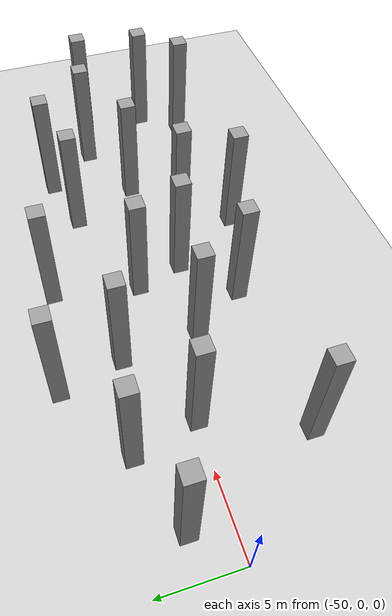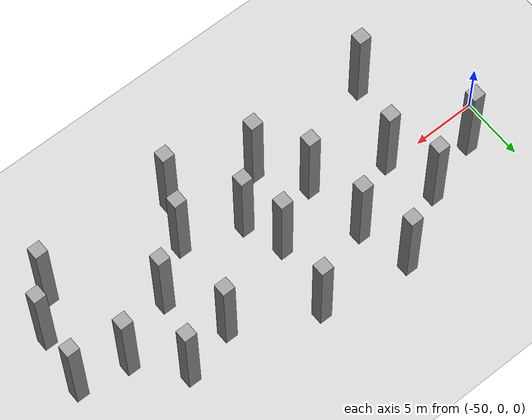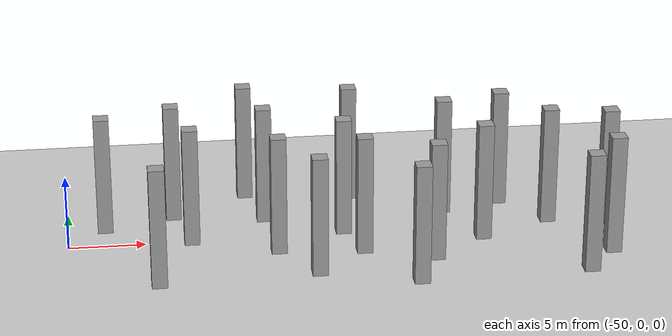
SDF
<sdf version="1.7">
 <world name="default">
  <model name="ground_plane">
   <static>1</static>
   <link name="link">
    <collision name="collision">
     <geometry><plane><normal>0 0 1</normal><size>100 100</size></plane></geometry>
     <surface>
      <contact><collide_bitmask>65535</collide_bitmask></contact>
      <friction><ode><mu>100</mu><mu2>50</mu2></ode></friction>
     </surface>
    </collision>
    <visual name="visual">
     <cast_shadows>0</cast_shadows>
     <geometry><plane><normal>0 0 1</normal><size>100 100</size></plane></geometry>
     <material>
      <script><uri>file://media/materials/scripts/gazebo.material</uri><name>Gazebo/Grey</name></script>
     </material>
    </visual>
   </link>
  </model>
  <model name="unit_box_static42_clone_35_clone_23">
   <link name="link">
    <inertial>
     <mass>1</mass>
     <inertia>
      <ixx>0.166667</ixx>
      <ixy>0</ixy>
      <ixz>0</ixz>
      <iyy>0.166667</iyy>
      <iyz>0</iyz>
      <izz>0.166667</izz>
     </inertia>
    </inertial>
    <visual name="visual">
     <geometry><box><size>1 1 8</size></box></geometry>
     <material>
      <script><name>Gazebo/Grey</name><uri>file://media/materials/scripts/gazebo.material</uri></script>
      <shader type="pixel"/>
     </material>
    </visual>
    <collision name="collision">
     <geometry><box><size>1 1 8</size></box></geometry>
     <surface>
      <friction>
       <ode><mu>1</mu><mu2>1</mu2><fdir1>0 0 0</fdir1><slip1>0</slip1><slip2>0</slip2></ode>
       <torsional>
        <coefficient>1</coefficient>
        <patch_radius>0</patch_radius>
        <surface_radius>0</surface_radius>
        <use_patch_radius>1</use_patch_radius>
        <ode><slip>0</slip></ode>
       </torsional>
      </friction>
      <bounce><restitution_coefficient>0</restitution_coefficient><threshold>1e+06</threshold></bounce>
      <contact>
       <collide_without_contact>0</collide_without_contact>
       <collide_without_contact_bitmask>1</collide_without_contact_bitmask>
       <collide_bitmask>1</collide_bitmask>
       <ode>
        <soft_cfm>0</soft_cfm>
        <soft_erp>0.2</soft_erp>
        <kp>1e+13</kp>
        <kd>1</kd>
        <max_vel>0.01</max_vel>
        <min_depth>0</min_depth>
       </ode>
       <bullet>
        <split_impulse>1</split_impulse>
        <split_impulse_penetration_threshold>-0.01</split_impulse_penetration_threshold>
        <soft_cfm>0</soft_cfm>
        <soft_erp>0.2</soft_erp>
        <kp>1e+13</kp>
        <kd>1</kd>
       </bullet>
      </contact>
     </surface>
    </collision>
   </link>
   <static>1</static>
   <pose>-25 3 4 0 -0 0</pose>
  </model>
  <model name="unit_box_static42_clone_35_clone_24">
   <link name="link">
    <inertial>
     <mass>1</mass>
     <inertia>
      <ixx>0.166667</ixx>
      <ixy>0</ixy>
      <ixz>0</ixz>
      <iyy>0.166667</iyy>
      <iyz>0</iyz>
      <izz>0.166667</izz>
     </inertia>
    </inertial>
    <visual name="visual">
     <geometry><box><size>1 1 8</size></box></geometry>
     <material>
      <script><name>Gazebo/Grey</name><uri>file://media/materials/scripts/gazebo.material</uri></script>
      <shader type="pixel"/>
     </material>
    </visual>
    <collision name="collision">
     <geometry><box><size>1 1 8</size></box></geometry>
     <surface>
      <friction>
       <ode><mu>1</mu><mu2>1</mu2><fdir1>0 0 0</fdir1><slip1>0</slip1><slip2>0</slip2></ode>
       <torsional>
        <coefficient>1</coefficient>
        <patch_radius>0</patch_radius>
        <surface_radius>0</surface_radius>
        <use_patch_radius>1</use_patch_radius>
        <ode><slip>0</slip></ode>
       </torsional>
      </friction>
      <bounce><restitution_coefficient>0</restitution_coefficient><threshold>1e+06</threshold></bounce>
      <contact>
       <collide_without_contact>0</collide_without_contact>
       <collide_without_contact_bitmask>1</collide_without_contact_bitmask>
       <collide_bitmask>1</collide_bitmask>
       <ode>
        <soft_cfm>0</soft_cfm>
        <soft_erp>0.2</soft_erp>
        <kp>1e+13</kp>
        <kd>1</kd>
        <max_vel>0.01</max_vel>
        <min_depth>0</min_depth>
       </ode>
       <bullet>
        <split_impulse>1</split_impulse>
        <split_impulse_penetration_threshold>-0.01</split_impulse_penetration_threshold>
        <soft_cfm>0</soft_cfm>
        <soft_erp>0.2</soft_erp>
        <kp>1e+13</kp>
        <kd>1</kd>
       </bullet>
      </contact>
     </surface>
    </collision>
   </link>
   <static>1</static>
   <pose>-17 -7 4 0 -0 0</pose>
  </model>
  <model name="unit_box_static42_clone_35_clone_26">
   <link name="link">
    <inertial>
     <mass>1</mass>
     <inertia>
      <ixx>0.166667</ixx>
      <ixy>0</ixy>
      <ixz>0</ixz>
      <iyy>0.166667</iyy>
      <iyz>0</iyz>
      <izz>0.166667</izz>
     </inertia>
    </inertial>
    <visual name="visual">
     <geometry><box><size>1 1 8</size></box></geometry>
     <material>
      <script><name>Gazebo/Grey</name><uri>file://media/materials/scripts/gazebo.material</uri></script>
      <shader type="pixel"/>
     </material>
    </visual>
    <collision name="collision">
     <geometry><box><size>1 1 8</size></box></geometry>
     <surface>
      <friction>
       <ode><mu>1</mu><mu2>1</mu2><fdir1>0 0 0</fdir1><slip1>0</slip1><slip2>0</slip2></ode>
       <torsional>
        <coefficient>1</coefficient>
        <patch_radius>0</patch_radius>
        <surface_radius>0</surface_radius>
        <use_patch_radius>1</use_patch_radius>
        <ode><slip>0</slip></ode>
       </torsional>
      </friction>
      <bounce><restitution_coefficient>0</restitution_coefficient><threshold>1e+06</threshold></bounce>
      <contact>
       <collide_without_contact>0</collide_without_contact>
       <collide_without_contact_bitmask>1</collide_without_contact_bitmask>
       <collide_bitmask>1</collide_bitmask>
       <ode>
        <soft_cfm>0</soft_cfm>
        <soft_erp>0.2</soft_erp>
        <kp>1e+13</kp>
        <kd>1</kd>
        <max_vel>0.01</max_vel>
        <min_depth>0</min_depth>
       </ode>
       <bullet>
        <split_impulse>1</split_impulse>
        <split_impulse_penetration_threshold>-0.01</split_impulse_penetration_threshold>
        <soft_cfm>0</soft_cfm>
        <soft_erp>0.2</soft_erp>
        <kp>1e+13</kp>
        <kd>1</kd>
       </bullet>
      </contact>
     </surface>
    </collision>
   </link>
   <static>1</static>
   <pose>-14.4084 0 4 0 -0 0</pose>
  </model>
  <model name="unit_box_static42_clone_35_clone_28">
   <link name="link">
    <inertial>
     <mass>1</mass>
     <inertia>
      <ixx>0.166667</ixx>
      <ixy>0</ixy>
      <ixz>0</ixz>
      <iyy>0.166667</iyy>
      <iyz>0</iyz>
      <izz>0.166667</izz>
     </inertia>
    </inertial>
    <visual name="visual">
     <geometry><box><size>1 1 8</size></box></geometry>
     <material>
      <script><name>Gazebo/Grey</name><uri>file://media/materials/scripts/gazebo.material</uri></script>
      <shader type="pixel"/>
     </material>
    </visual>
    <collision name="collision">
     <geometry><box><size>1 1 8</size></box></geometry>
     <surface>
      <friction>
       <ode><mu>1</mu><mu2>1</mu2><fdir1>0 0 0</fdir1><slip1>0</slip1><slip2>0</slip2></ode>
       <torsional>
        <coefficient>1</coefficient>
        <patch_radius>0</patch_radius>
        <surface_radius>0</surface_radius>
        <use_patch_radius>1</use_patch_radius>
        <ode><slip>0</slip></ode>
       </torsional>
      </friction>
      <bounce><restitution_coefficient>0</restitution_coefficient><threshold>1e+06</threshold></bounce>
      <contact>
       <collide_without_contact>0</collide_without_contact>
       <collide_without_contact_bitmask>1</collide_without_contact_bitmask>
       <collide_bitmask>1</collide_bitmask>
       <ode>
        <soft_cfm>0</soft_cfm>
        <soft_erp>0.2</soft_erp>
        <kp>1e+13</kp>
        <kd>1</kd>
        <max_vel>0.01</max_vel>
        <min_depth>0</min_depth>
       </ode>
       <bullet>
        <split_impulse>1</split_impulse>
        <split_impulse_penetration_threshold>-0.01</split_impulse_penetration_threshold>
        <soft_cfm>0</soft_cfm>
        <soft_erp>0.2</soft_erp>
        <kp>1e+13</kp>
        <kd>1</kd>
       </bullet>
      </contact>
     </surface>
    </collision>
   </link>
   <static>1</static>
   <pose>-23 -1.4318 4 0 -0 0</pose>
  </model>
  <model name="unit_box_static42_clone_35_clone_29">
   <link name="link">
    <inertial>
     <mass>1</mass>
     <inertia>
      <ixx>0.166667</ixx>
      <ixy>0</ixy>
      <ixz>0</ixz>
      <iyy>0.166667</iyy>
      <iyz>0</iyz>
      <izz>0.166667</izz>
     </inertia>
    </inertial>
    <visual name="visual">
     <geometry><box><size>1 1 8</size></box></geometry>
     <material>
      <script><name>Gazebo/Grey</name><uri>file://media/materials/scripts/gazebo.material</uri></script>
      <shader type="pixel"/>
     </material>
    </visual>
    <collision name="collision">
     <geometry><box><size>1 1 8</size></box></geometry>
     <surface>
      <friction>
       <ode><mu>1</mu><mu2>1</mu2><fdir1>0 0 0</fdir1><slip1>0</slip1><slip2>0</slip2></ode>
       <torsional>
        <coefficient>1</coefficient>
        <patch_radius>0</patch_radius>
        <surface_radius>0</surface_radius>
        <use_patch_radius>1</use_patch_radius>
        <ode><slip>0</slip></ode>
       </torsional>
      </friction>
      <bounce><restitution_coefficient>0</restitution_coefficient><threshold>1e+06</threshold></bounce>
      <contact>
       <collide_without_contact>0</collide_without_contact>
       <collide_without_contact_bitmask>1</collide_without_contact_bitmask>
       <collide_bitmask>1</collide_bitmask>
       <ode>
        <soft_cfm>0</soft_cfm>
        <soft_erp>0.2</soft_erp>
        <kp>1e+13</kp>
        <kd>1</kd>
        <max_vel>0.01</max_vel>
        <min_depth>0</min_depth>
       </ode>
       <bullet>
        <split_impulse>1</split_impulse>
        <split_impulse_penetration_threshold>-0.01</split_impulse_penetration_threshold>
        <soft_cfm>0</soft_cfm>
        <soft_erp>0.2</soft_erp>
        <kp>1e+13</kp>
        <kd>1</kd>
       </bullet>
      </contact>
     </surface>
    </collision>
   </link>
   <static>1</static>
   <pose>-21 4 4 0 -0 0</pose>
  </model>
  <model name="unit_box_static42_clone_35_clone_30">
   <link name="link">
    <inertial>
     <mass>1</mass>
     <inertia>
      <ixx>0.166667</ixx>
      <ixy>0</ixy>
      <ixz>0</ixz>
      <iyy>0.166667</iyy>
      <iyz>0</iyz>
      <izz>0.166667</izz>
     </inertia>
    </inertial>
    <visual name="visual">
     <geometry><box><size>1 1 8</size></box></geometry>
     <material>
      <script><name>Gazebo/Grey</name><uri>file://media/materials/scripts/gazebo.material</uri></script>
      <shader type="pixel"/>
     </material>
    </visual>
    <collision name="collision">
     <geometry><box><size>1 1 8</size></box></geometry>
     <surface>
      <friction>
       <ode><mu>1</mu><mu2>1</mu2><fdir1>0 0 0</fdir1><slip1>0</slip1><slip2>0</slip2></ode>
       <torsional>
        <coefficient>1</coefficient>
        <patch_radius>0</patch_radius>
        <surface_radius>0</surface_radius>
        <use_patch_radius>1</use_patch_radius>
        <ode><slip>0</slip></ode>
       </torsional>
      </friction>
      <bounce><restitution_coefficient>0</restitution_coefficient><threshold>1e+06</threshold></bounce>
      <contact>
       <collide_without_contact>0</collide_without_contact>
       <collide_without_contact_bitmask>1</collide_without_contact_bitmask>
       <collide_bitmask>1</collide_bitmask>
       <ode>
        <soft_cfm>0</soft_cfm>
        <soft_erp>0.2</soft_erp>
        <kp>1e+13</kp>
        <kd>1</kd>
        <max_vel>0.01</max_vel>
        <min_depth>0</min_depth>
       </ode>
       <bullet>
        <split_impulse>1</split_impulse>
        <split_impulse_penetration_threshold>-0.01</split_impulse_penetration_threshold>
        <soft_cfm>0</soft_cfm>
        <soft_erp>0.2</soft_erp>
        <kp>1e+13</kp>
        <kd>1</kd>
       </bullet>
      </contact>
     </surface>
    </collision>
   </link>
   <static>1</static>
   <pose>-15 -4.45187 4 0 -0 0</pose>
  </model>
  <model name="unit_box_static42_clone_35_clone_31">
   <link name="link">
    <inertial>
     <mass>1</mass>
     <inertia>
      <ixx>0.166667</ixx>
      <ixy>0</ixy>
      <ixz>0</ixz>
      <iyy>0.166667</iyy>
      <iyz>0</iyz>
      <izz>0.166667</izz>
     </inertia>
    </inertial>
    <visual name="visual">
     <geometry><box><size>1 1 8</size></box></geometry>
     <material>
      <script><name>Gazebo/Grey</name><uri>file://media/materials/scripts/gazebo.material</uri></script>
      <shader type="pixel"/>
     </material>
    </visual>
    <collision name="collision">
     <geometry><box><size>1 1 8</size></box></geometry>
     <surface>
      <friction>
       <ode><mu>1</mu><mu2>1</mu2><fdir1>0 0 0</fdir1><slip1>0</slip1><slip2>0</slip2></ode>
       <torsional>
        <coefficient>1</coefficient>
        <patch_radius>0</patch_radius>
        <surface_radius>0</surface_radius>
        <use_patch_radius>1</use_patch_radius>
        <ode><slip>0</slip></ode>
       </torsional>
      </friction>
      <bounce><restitution_coefficient>0</restitution_coefficient><threshold>1e+06</threshold></bounce>
      <contact>
       <collide_without_contact>0</collide_without_contact>
       <collide_without_contact_bitmask>1</collide_without_contact_bitmask>
       <collide_bitmask>1</collide_bitmask>
       <ode>
        <soft_cfm>0</soft_cfm>
        <soft_erp>0.2</soft_erp>
        <kp>1e+13</kp>
        <kd>1</kd>
        <max_vel>0.01</max_vel>
        <min_depth>0</min_depth>
       </ode>
       <bullet>
        <split_impulse>1</split_impulse>
        <split_impulse_penetration_threshold>-0.01</split_impulse_penetration_threshold>
        <soft_cfm>0</soft_cfm>
        <soft_erp>0.2</soft_erp>
        <kp>1e+13</kp>
        <kd>1</kd>
       </bullet>
      </contact>
     </surface>
    </collision>
   </link>
   <static>1</static>
   <pose>-32 0.496419 4 0 -0 0</pose>
  </model>
  <model name="unit_box_static42_clone_35_clone_32">
   <link name="link">
    <inertial>
     <mass>1</mass>
     <inertia>
      <ixx>0.166667</ixx>
      <ixy>0</ixy>
      <ixz>0</ixz>
      <iyy>0.166667</iyy>
      <iyz>0</iyz>
      <izz>0.166667</izz>
     </inertia>
    </inertial>
    <visual name="visual">
     <geometry><box><size>1 1 8</size></box></geometry>
     <material>
      <script><name>Gazebo/Grey</name><uri>file://media/materials/scripts/gazebo.material</uri></script>
      <shader type="pixel"/>
     </material>
    </visual>
    <collision name="collision">
     <geometry><box><size>1 1 8</size></box></geometry>
     <surface>
      <friction>
       <ode><mu>1</mu><mu2>1</mu2><fdir1>0 0 0</fdir1><slip1>0</slip1><slip2>0</slip2></ode>
       <torsional>
        <coefficient>1</coefficient>
        <patch_radius>0</patch_radius>
        <surface_radius>0</surface_radius>
        <use_patch_radius>1</use_patch_radius>
        <ode><slip>0</slip></ode>
       </torsional>
      </friction>
      <bounce><restitution_coefficient>0</restitution_coefficient><threshold>1e+06</threshold></bounce>
      <contact>
       <collide_without_contact>0</collide_without_contact>
       <collide_without_contact_bitmask>1</collide_without_contact_bitmask>
       <collide_bitmask>1</collide_bitmask>
       <ode>
        <soft_cfm>0</soft_cfm>
        <soft_erp>0.2</soft_erp>
        <kp>1e+13</kp>
        <kd>1</kd>
        <max_vel>0.01</max_vel>
        <min_depth>0</min_depth>
       </ode>
       <bullet>
        <split_impulse>1</split_impulse>
        <split_impulse_penetration_threshold>-0.01</split_impulse_penetration_threshold>
        <soft_cfm>0</soft_cfm>
        <soft_erp>0.2</soft_erp>
        <kp>1e+13</kp>
        <kd>1</kd>
       </bullet>
      </contact>
     </surface>
    </collision>
   </link>
   <static>1</static>
   <pose>-34.2306 -5.48897 4 0 -0 0</pose>
  </model>
  <model name="unit_box_static42_clone_35_clone_33">
   <link name="link">
    <inertial>
     <mass>1</mass>
     <inertia>
      <ixx>0.166667</ixx>
      <ixy>0</ixy>
      <ixz>0</ixz>
      <iyy>0.166667</iyy>
      <iyz>0</iyz>
      <izz>0.166667</izz>
     </inertia>
    </inertial>
    <visual name="visual">
     <geometry><box><size>1 1 8</size></box></geometry>
     <material>
      <script><name>Gazebo/Grey</name><uri>file://media/materials/scripts/gazebo.material</uri></script>
      <shader type="pixel"/>
     </material>
    </visual>
    <collision name="collision">
     <geometry><box><size>1 1 8</size></box></geometry>
     <surface>
      <friction>
       <ode><mu>1</mu><mu2>1</mu2><fdir1>0 0 0</fdir1><slip1>0</slip1><slip2>0</slip2></ode>
       <torsional>
        <coefficient>1</coefficient>
        <patch_radius>0</patch_radius>
        <surface_radius>0</surface_radius>
        <use_patch_radius>1</use_patch_radius>
        <ode><slip>0</slip></ode>
       </torsional>
      </friction>
      <bounce><restitution_coefficient>0</restitution_coefficient><threshold>1e+06</threshold></bounce>
      <contact>
       <collide_without_contact>0</collide_without_contact>
       <collide_without_contact_bitmask>1</collide_without_contact_bitmask>
       <collide_bitmask>1</collide_bitmask>
       <ode>
        <soft_cfm>0</soft_cfm>
        <soft_erp>0.2</soft_erp>
        <kp>1e+13</kp>
        <kd>1</kd>
        <max_vel>0.01</max_vel>
        <min_depth>0</min_depth>
       </ode>
       <bullet>
        <split_impulse>1</split_impulse>
        <split_impulse_penetration_threshold>-0.01</split_impulse_penetration_threshold>
        <soft_cfm>0</soft_cfm>
        <soft_erp>0.2</soft_erp>
        <kp>1e+13</kp>
        <kd>1</kd>
       </bullet>
      </contact>
     </surface>
    </collision>
   </link>
   <static>1</static>
   <pose>-47.5717 2.48797 4 0 -0 0</pose>
  </model>
  <model name="unit_box_static42_clone_35_clone_34">
   <link name="link">
    <inertial>
     <mass>1</mass>
     <inertia>
      <ixx>0.166667</ixx>
      <ixy>0</ixy>
      <ixz>0</ixz>
      <iyy>0.166667</iyy>
      <iyz>0</iyz>
      <izz>0.166667</izz>
     </inertia>
    </inertial>
    <visual name="visual">
     <geometry><box><size>1 1 8</size></box></geometry>
     <material>
      <script><name>Gazebo/Grey</name><uri>file://media/materials/scripts/gazebo.material</uri></script>
      <shader type="pixel"/>
     </material>
    </visual>
    <collision name="collision">
     <geometry><box><size>1 1 8</size></box></geometry>
     <surface>
      <friction>
       <ode><mu>1</mu><mu2>1</mu2><fdir1>0 0 0</fdir1><slip1>0</slip1><slip2>0</slip2></ode>
       <torsional>
        <coefficient>1</coefficient>
        <patch_radius>0</patch_radius>
        <surface_radius>0</surface_radius>
        <use_patch_radius>1</use_patch_radius>
        <ode><slip>0</slip></ode>
       </torsional>
      </friction>
      <bounce><restitution_coefficient>0</restitution_coefficient><threshold>1e+06</threshold></bounce>
      <contact>
       <collide_without_contact>0</collide_without_contact>
       <collide_without_contact_bitmask>1</collide_without_contact_bitmask>
       <collide_bitmask>1</collide_bitmask>
       <ode>
        <soft_cfm>0</soft_cfm>
        <soft_erp>0.2</soft_erp>
        <kp>1e+13</kp>
        <kd>1</kd>
        <max_vel>0.01</max_vel>
        <min_depth>0</min_depth>
       </ode>
       <bullet>
        <split_impulse>1</split_impulse>
        <split_impulse_penetration_threshold>-0.01</split_impulse_penetration_threshold>
        <soft_cfm>0</soft_cfm>
        <soft_erp>0.2</soft_erp>
        <kp>1e+13</kp>
        <kd>1</kd>
       </bullet>
      </contact>
     </surface>
    </collision>
   </link>
   <static>1</static>
   <pose>-44.4069 -6 4 0 -0 0</pose>
  </model>
  <model name="unit_box_static42_clone_35_clone_36">
   <link name="link">
    <inertial>
     <mass>1</mass>
     <inertia>
      <ixx>0.166667</ixx>
      <ixy>0</ixy>
      <ixz>0</ixz>
      <iyy>0.166667</iyy>
      <iyz>0</iyz>
      <izz>0.166667</izz>
     </inertia>
    </inertial>
    <visual name="visual">
     <geometry><box><size>1 1 8</size></box></geometry>
     <material>
      <script><name>Gazebo/Grey</name><uri>file://media/materials/scripts/gazebo.material</uri></script>
      <shader type="pixel"/>
     </material>
    </visual>
    <collision name="collision">
     <geometry><box><size>1 1 8</size></box></geometry>
     <surface>
      <friction>
       <ode><mu>1</mu><mu2>1</mu2><fdir1>0 0 0</fdir1><slip1>0</slip1><slip2>0</slip2></ode>
       <torsional>
        <coefficient>1</coefficient>
        <patch_radius>0</patch_radius>
        <surface_radius>0</surface_radius>
        <use_patch_radius>1</use_patch_radius>
        <ode><slip>0</slip></ode>
       </torsional>
      </friction>
      <bounce><restitution_coefficient>0</restitution_coefficient><threshold>1e+06</threshold></bounce>
      <contact>
       <collide_without_contact>0</collide_without_contact>
       <collide_without_contact_bitmask>1</collide_without_contact_bitmask>
       <collide_bitmask>1</collide_bitmask>
       <ode>
        <soft_cfm>0</soft_cfm>
        <soft_erp>0.2</soft_erp>
        <kp>1e+13</kp>
        <kd>1</kd>
        <max_vel>0.01</max_vel>
        <min_depth>0</min_depth>
       </ode>
       <bullet>
        <split_impulse>1</split_impulse>
        <split_impulse_penetration_threshold>-0.01</split_impulse_penetration_threshold>
        <soft_cfm>0</soft_cfm>
        <soft_erp>0.2</soft_erp>
        <kp>1e+13</kp>
        <kd>1</kd>
       </bullet>
      </contact>
     </surface>
    </collision>
   </link>
   <static>1</static>
   <pose>-43 4 4 0 -0 0</pose>
  </model>
  <model name="unit_box_static42_clone_35_clone_37">
   <link name="link">
    <inertial>
     <mass>1</mass>
     <inertia>
      <ixx>0.166667</ixx>
      <ixy>0</ixy>
      <ixz>0</ixz>
      <iyy>0.166667</iyy>
      <iyz>0</iyz>
      <izz>0.166667</izz>
     </inertia>
    </inertial>
    <visual name="visual">
     <geometry><box><size>1 1 8</size></box></geometry>
     <material>
      <script><name>Gazebo/Grey</name><uri>file://media/materials/scripts/gazebo.material</uri></script>
      <shader type="pixel"/>
     </material>
    </visual>
    <collision name="collision">
     <geometry><box><size>1 1 8</size></box></geometry>
     <surface>
      <friction>
       <ode><mu>1</mu><mu2>1</mu2><fdir1>0 0 0</fdir1><slip1>0</slip1><slip2>0</slip2></ode>
       <torsional>
        <coefficient>1</coefficient>
        <patch_radius>0</patch_radius>
        <surface_radius>0</surface_radius>
        <use_patch_radius>1</use_patch_radius>
        <ode><slip>0</slip></ode>
       </torsional>
      </friction>
      <bounce><restitution_coefficient>0</restitution_coefficient><threshold>1e+06</threshold></bounce>
      <contact>
       <collide_without_contact>0</collide_without_contact>
       <collide_without_contact_bitmask>1</collide_without_contact_bitmask>
       <collide_bitmask>1</collide_bitmask>
       <ode>
        <soft_cfm>0</soft_cfm>
        <soft_erp>0.2</soft_erp>
        <kp>1e+13</kp>
        <kd>1</kd>
        <max_vel>0.01</max_vel>
        <min_depth>0</min_depth>
       </ode>
       <bullet>
        <split_impulse>1</split_impulse>
        <split_impulse_penetration_threshold>-0.01</split_impulse_penetration_threshold>
        <soft_cfm>0</soft_cfm>
        <soft_erp>0.2</soft_erp>
        <kp>1e+13</kp>
        <kd>1</kd>
       </bullet>
      </contact>
     </surface>
    </collision>
   </link>
   <static>1</static>
   <pose>-38 7 4 0 -0 0</pose>
  </model>
  <model name="unit_box_static42_clone_35_clone_38">
   <link name="link">
    <inertial>
     <mass>1</mass>
     <inertia>
      <ixx>0.166667</ixx>
      <ixy>0</ixy>
      <ixz>0</ixz>
      <iyy>0.166667</iyy>
      <iyz>0</iyz>
      <izz>0.166667</izz>
     </inertia>
    </inertial>
    <visual name="visual">
     <geometry><box><size>1 1 8</size></box></geometry>
     <material>
      <script><name>Gazebo/Grey</name><uri>file://media/materials/scripts/gazebo.material</uri></script>
      <shader type="pixel"/>
     </material>
    </visual>
    <collision name="collision">
     <geometry><box><size>1 1 8</size></box></geometry>
     <surface>
      <friction>
       <ode><mu>1</mu><mu2>1</mu2><fdir1>0 0 0</fdir1><slip1>0</slip1><slip2>0</slip2></ode>
       <torsional>
        <coefficient>1</coefficient>
        <patch_radius>0</patch_radius>
        <surface_radius>0</surface_radius>
        <use_patch_radius>1</use_patch_radius>
        <ode><slip>0</slip></ode>
       </torsional>
      </friction>
      <bounce><restitution_coefficient>0</restitution_coefficient><threshold>1e+06</threshold></bounce>
      <contact>
       <collide_without_contact>0</collide_without_contact>
       <collide_without_contact_bitmask>1</collide_without_contact_bitmask>
       <collide_bitmask>1</collide_bitmask>
       <ode>
        <soft_cfm>0</soft_cfm>
        <soft_erp>0.2</soft_erp>
        <kp>1e+13</kp>
        <kd>1</kd>
        <max_vel>0.01</max_vel>
        <min_depth>0</min_depth>
       </ode>
       <bullet>
        <split_impulse>1</split_impulse>
        <split_impulse_penetration_threshold>-0.01</split_impulse_penetration_threshold>
        <soft_cfm>0</soft_cfm>
        <soft_erp>0.2</soft_erp>
        <kp>1e+13</kp>
        <kd>1</kd>
       </bullet>
      </contact>
     </surface>
    </collision>
   </link>
   <static>1</static>
   <pose>-36.4989 -2 4 0 -0 0</pose>
  </model>
  <model name="unit_box_static42_clone_35_clone_39">
   <link name="link">
    <inertial>
     <mass>1</mass>
     <inertia>
      <ixx>0.166667</ixx>
      <ixy>0</ixy>
      <ixz>0</ixz>
      <iyy>0.166667</iyy>
      <iyz>0</iyz>
      <izz>0.166667</izz>
     </inertia>
    </inertial>
    <visual name="visual">
     <geometry><box><size>1 1 8</size></box></geometry>
     <material>
      <script><name>Gazebo/Grey</name><uri>file://media/materials/scripts/gazebo.material</uri></script>
      <shader type="pixel"/>
     </material>
    </visual>
    <collision name="collision">
     <geometry><box><size>1 1 8</size></box></geometry>
     <surface>
      <friction>
       <ode><mu>1</mu><mu2>1</mu2><fdir1>0 0 0</fdir1><slip1>0</slip1><slip2>0</slip2></ode>
       <torsional>
        <coefficient>1</coefficient>
        <patch_radius>0</patch_radius>
        <surface_radius>0</surface_radius>
        <use_patch_radius>1</use_patch_radius>
        <ode><slip>0</slip></ode>
       </torsional>
      </friction>
      <bounce><restitution_coefficient>0</restitution_coefficient><threshold>1e+06</threshold></bounce>
      <contact>
       <collide_without_contact>0</collide_without_contact>
       <collide_without_contact_bitmask>1</collide_without_contact_bitmask>
       <collide_bitmask>1</collide_bitmask>
       <ode>
        <soft_cfm>0</soft_cfm>
        <soft_erp>0.2</soft_erp>
        <kp>1e+13</kp>
        <kd>1</kd>
        <max_vel>0.01</max_vel>
        <min_depth>0</min_depth>
       </ode>
       <bullet>
        <split_impulse>1</split_impulse>
        <split_impulse_penetration_threshold>-0.01</split_impulse_penetration_threshold>
        <soft_cfm>0</soft_cfm>
        <soft_erp>0.2</soft_erp>
        <kp>1e+13</kp>
        <kd>1</kd>
       </bullet>
      </contact>
     </surface>
    </collision>
   </link>
   <static>1</static>
   <pose>-31 6 4 0 -0 0</pose>
  </model>
  <model name="unit_box_static42_clone_35_clone_40">
   <link name="link">
    <inertial>
     <mass>1</mass>
     <inertia>
      <ixx>0.166667</ixx>
      <ixy>0</ixy>
      <ixz>0</ixz>
      <iyy>0.166667</iyy>
      <iyz>0</iyz>
      <izz>0.166667</izz>
     </inertia>
    </inertial>
    <visual name="visual">
     <geometry><box><size>1 1 8</size></box></geometry>
     <material>
      <script><name>Gazebo/Grey</name><uri>file://media/materials/scripts/gazebo.material</uri></script>
      <shader type="pixel"/>
     </material>
    </visual>
    <collision name="collision">
     <geometry><box><size>1 1 8</size></box></geometry>
     <surface>
      <friction>
       <ode><mu>1</mu><mu2>1</mu2><fdir1>0 0 0</fdir1><slip1>0</slip1><slip2>0</slip2></ode>
       <torsional>
        <coefficient>1</coefficient>
        <patch_radius>0</patch_radius>
        <surface_radius>0</surface_radius>
        <use_patch_radius>1</use_patch_radius>
        <ode><slip>0</slip></ode>
       </torsional>
      </friction>
      <bounce><restitution_coefficient>0</restitution_coefficient><threshold>1e+06</threshold></bounce>
      <contact>
       <collide_without_contact>0</collide_without_contact>
       <collide_without_contact_bitmask>1</collide_without_contact_bitmask>
       <collide_bitmask>1</collide_bitmask>
       <ode>
        <soft_cfm>0</soft_cfm>
        <soft_erp>0.2</soft_erp>
        <kp>1e+13</kp>
        <kd>1</kd>
        <max_vel>0.01</max_vel>
        <min_depth>0</min_depth>
       </ode>
       <bullet>
        <split_impulse>1</split_impulse>
        <split_impulse_penetration_threshold>-0.01</split_impulse_penetration_threshold>
        <soft_cfm>0</soft_cfm>
        <soft_erp>0.2</soft_erp>
        <kp>1e+13</kp>
        <kd>1</kd>
       </bullet>
      </contact>
     </surface>
    </collision>
   </link>
   <static>1</static>
   <pose>-37 3 4 0 -0 0</pose>
  </model>
  <model name="unit_box_static42_clone_35_clone_41">
   <link name="link">
    <inertial>
     <mass>1</mass>
     <inertia>
      <ixx>0.166667</ixx>
      <ixy>0</ixy>
      <ixz>0</ixz>
      <iyy>0.166667</iyy>
      <iyz>0</iyz>
      <izz>0.166667</izz>
     </inertia>
    </inertial>
    <visual name="visual">
     <geometry><box><size>1 1 8</size></box></geometry>
     <material>
      <script><name>Gazebo/Grey</name><uri>file://media/materials/scripts/gazebo.material</uri></script>
      <shader type="pixel"/>
     </material>
    </visual>
    <collision name="collision">
     <geometry><box><size>1 1 8</size></box></geometry>
     <surface>
      <friction>
       <ode><mu>1</mu><mu2>1</mu2><fdir1>0 0 0</fdir1><slip1>0</slip1><slip2>0</slip2></ode>
       <torsional>
        <coefficient>1</coefficient>
        <patch_radius>0</patch_radius>
        <surface_radius>0</surface_radius>
        <use_patch_radius>1</use_patch_radius>
        <ode><slip>0</slip></ode>
       </torsional>
      </friction>
      <bounce><restitution_coefficient>0</restitution_coefficient><threshold>1e+06</threshold></bounce>
      <contact>
       <collide_without_contact>0</collide_without_contact>
       <collide_without_contact_bitmask>1</collide_without_contact_bitmask>
       <collide_bitmask>1</collide_bitmask>
       <ode>
        <soft_cfm>0</soft_cfm>
        <soft_erp>0.2</soft_erp>
        <kp>1e+13</kp>
        <kd>1</kd>
        <max_vel>0.01</max_vel>
        <min_depth>0</min_depth>
       </ode>
       <bullet>
        <split_impulse>1</split_impulse>
        <split_impulse_penetration_threshold>-0.01</split_impulse_penetration_threshold>
        <soft_cfm>0</soft_cfm>
        <soft_erp>0.2</soft_erp>
        <kp>1e+13</kp>
        <kd>1</kd>
       </bullet>
      </contact>
     </surface>
    </collision>
   </link>
   <static>1</static>
   <pose>-42 0 4 0 -0 0</pose>
  </model>
  <model name="unit_box_static42_clone_35_clone_44">
   <link name="link">
    <inertial>
     <mass>1</mass>
     <inertia>
      <ixx>0.166667</ixx>
      <ixy>0</ixy>
      <ixz>0</ixz>
      <iyy>0.166667</iyy>
      <iyz>0</iyz>
      <izz>0.166667</izz>
     </inertia>
    </inertial>
    <visual name="visual">
     <geometry><box><size>1 1 8</size></box></geometry>
     <material>
      <script><name>Gazebo/Grey</name><uri>file://media/materials/scripts/gazebo.material</uri></script>
      <shader type="pixel"/>
     </material>
    </visual>
    <collision name="collision">
     <geometry><box><size>1 1 8</size></box></geometry>
     <surface>
      <friction>
       <ode><mu>1</mu><mu2>1</mu2><fdir1>0 0 0</fdir1><slip1>0</slip1><slip2>0</slip2></ode>
       <torsional>
        <coefficient>1</coefficient>
        <patch_radius>0</patch_radius>
        <surface_radius>0</surface_radius>
        <use_patch_radius>1</use_patch_radius>
        <ode><slip>0</slip></ode>
       </torsional>
      </friction>
      <bounce><restitution_coefficient>0</restitution_coefficient><threshold>1e+06</threshold></bounce>
      <contact>
       <collide_without_contact>0</collide_without_contact>
       <collide_without_contact_bitmask>1</collide_without_contact_bitmask>
       <collide_bitmask>1</collide_bitmask>
       <ode>
        <soft_cfm>0</soft_cfm>
        <soft_erp>0.2</soft_erp>
        <kp>1e+13</kp>
        <kd>1</kd>
        <max_vel>0.01</max_vel>
        <min_depth>0</min_depth>
       </ode>
       <bullet>
        <split_impulse>1</split_impulse>
        <split_impulse_penetration_threshold>-0.01</split_impulse_penetration_threshold>
        <soft_cfm>0</soft_cfm>
        <soft_erp>0.2</soft_erp>
        <kp>1e+13</kp>
        <kd>1</kd>
       </bullet>
      </contact>
     </surface>
    </collision>
   </link>
   <static>1</static>
   <pose>-18.2817 0.675503 4 0 -0 0</pose>
  </model>
  <model name="unit_box_static42_clone_35_clone_51">
   <link name="link">
    <inertial>
     <mass>1</mass>
     <inertia>
      <ixx>0.166667</ixx>
      <ixy>0</ixy>
      <ixz>0</ixz>
      <iyy>0.166667</iyy>
      <iyz>0</iyz>
      <izz>0.166667</izz>
     </inertia>
    </inertial>
    <visual name="visual">
     <geometry><box><size>1 1 8</size></box></geometry>
     <material>
      <script><name>Gazebo/Grey</name><uri>file://media/materials/scripts/gazebo.material</uri></script>
      <shader type="pixel"/>
     </material>
    </visual>
    <collision name="collision">
     <geometry><box><size>1 1 8</size></box></geometry>
     <surface>
      <friction>
       <ode><mu>1</mu><mu2>1</mu2><fdir1>0 0 0</fdir1><slip1>0</slip1><slip2>0</slip2></ode>
       <torsional>
        <coefficient>1</coefficient>
        <patch_radius>0</patch_radius>
        <surface_radius>0</surface_radius>
        <use_patch_radius>1</use_patch_radius>
        <ode><slip>0</slip></ode>
       </torsional>
      </friction>
      <bounce><restitution_coefficient>0</restitution_coefficient><threshold>1e+06</threshold></bounce>
      <contact>
       <collide_without_contact>0</collide_without_contact>
       <collide_without_contact_bitmask>1</collide_without_contact_bitmask>
       <collide_bitmask>1</collide_bitmask>
       <ode>
        <soft_cfm>0</soft_cfm>
        <soft_erp>0.2</soft_erp>
        <kp>1e+13</kp>
        <kd>1</kd>
        <max_vel>0.01</max_vel>
        <min_depth>0</min_depth>
       </ode>
       <bullet>
        <split_impulse>1</split_impulse>
        <split_impulse_penetration_threshold>-0.01</split_impulse_penetration_threshold>
        <soft_cfm>0</soft_cfm>
        <soft_erp>0.2</soft_erp>
        <kp>1e+13</kp>
        <kd>1</kd>
       </bullet>
      </contact>
     </surface>
    </collision>
   </link>
   <static>1</static>
   <pose>-28 -7.37585 4 0 -0 0</pose>
  </model>
  <model name="unit_box_static42_clone_35_clone_53">
   <link name="link">
    <inertial>
     <mass>1</mass>
     <inertia>
      <ixx>0.166667</ixx>
      <ixy>0</ixy>
      <ixz>0</ixz>
      <iyy>0.166667</iyy>
      <iyz>0</iyz>
      <izz>0.166667</izz>
     </inertia>
    </inertial>
    <visual name="visual">
     <geometry><box><size>1 1 8</size></box></geometry>
     <material>
      <script><name>Gazebo/Grey</name><uri>file://media/materials/scripts/gazebo.material</uri></script>
      <shader type="pixel"/>
     </material>
    </visual>
    <collision name="collision">
     <geometry><box><size>1 1 8</size></box></geometry>
     <surface>
      <friction>
       <ode><mu>1</mu><mu2>1</mu2><fdir1>0 0 0</fdir1><slip1>0</slip1><slip2>0</slip2></ode>
       <torsional>
        <coefficient>1</coefficient>
        <patch_radius>0</patch_radius>
        <surface_radius>0</surface_radius>
        <use_patch_radius>1</use_patch_radius>
        <ode><slip>0</slip></ode>
       </torsional>
      </friction>
      <bounce><restitution_coefficient>0</restitution_coefficient><threshold>1e+06</threshold></bounce>
      <contact>
       <collide_without_contact>0</collide_without_contact>
       <collide_without_contact_bitmask>1</collide_without_contact_bitmask>
       <collide_bitmask>1</collide_bitmask>
       <ode>
        <soft_cfm>0</soft_cfm>
        <soft_erp>0.2</soft_erp>
        <kp>1e+13</kp>
        <kd>1</kd>
        <max_vel>0.01</max_vel>
        <min_depth>0</min_depth>
       </ode>
       <bullet>
        <split_impulse>1</split_impulse>
        <split_impulse_penetration_threshold>-0.01</split_impulse_penetration_threshold>
        <soft_cfm>0</soft_cfm>
        <soft_erp>0.2</soft_erp>
        <kp>1e+13</kp>
        <kd>1</kd>
       </bullet>
      </contact>
     </surface>
    </collision>
   </link>
   <static>1</static>
   <pose>-26.4993 -4.12307 4 0 -0 0</pose>
  </model>
  <model name="unit_box_static42_clone_35_clone_23_clone">
   <link name="link">
    <inertial>
     <mass>1</mass>
     <inertia>
      <ixx>0.166667</ixx>
      <ixy>0</ixy>
      <ixz>0</ixz>
      <iyy>0.166667</iyy>
      <iyz>0</iyz>
      <izz>0.166667</izz>
     </inertia>
    </inertial>
    <visual name="visual">
     <geometry><box><size>1 1 8</size></box></geometry>
     <material>
      <script><name>Gazebo/Grey</name><uri>file://media/materials/scripts/gazebo.material</uri></script>
      <shader type="pixel"/>
     </material>
    </visual>
    <collision name="collision">
     <geometry><box><size>1 1 8</size></box></geometry>
     <surface>
      <friction>
       <ode><mu>1</mu><mu2>1</mu2><fdir1>0 0 0</fdir1><slip1>0</slip1><slip2>0</slip2></ode>
       <torsional>
        <coefficient>1</coefficient>
        <patch_radius>0</patch_radius>
        <surface_radius>0</surface_radius>
        <use_patch_radius>1</use_patch_radius>
        <ode><slip>0</slip></ode>
       </torsional>
      </friction>
      <bounce><restitution_coefficient>0</restitution_coefficient><threshold>1e+06</threshold></bounce>
      <contact>
       <collide_without_contact>0</collide_without_contact>
       <collide_without_contact_bitmask>1</collide_without_contact_bitmask>
       <collide_bitmask>1</collide_bitmask>
       <ode>
        <soft_cfm>0</soft_cfm>
        <soft_erp>0.2</soft_erp>
        <kp>1e+13</kp>
        <kd>1</kd>
        <max_vel>0.01</max_vel>
        <min_depth>0</min_depth>
       </ode>
       <bullet>
        <split_impulse>1</split_impulse>
        <split_impulse_penetration_threshold>-0.01</split_impulse_penetration_threshold>
        <soft_cfm>0</soft_cfm>
        <soft_erp>0.2</soft_erp>
        <kp>1e+13</kp>
        <kd>1</kd>
       </bullet>
      </contact>
     </surface>
    </collision>
   </link>
   <static>1</static>
   <pose>-31 -2.58481 4 0 -0 0</pose>
  </model>
 </world>
</sdf>
